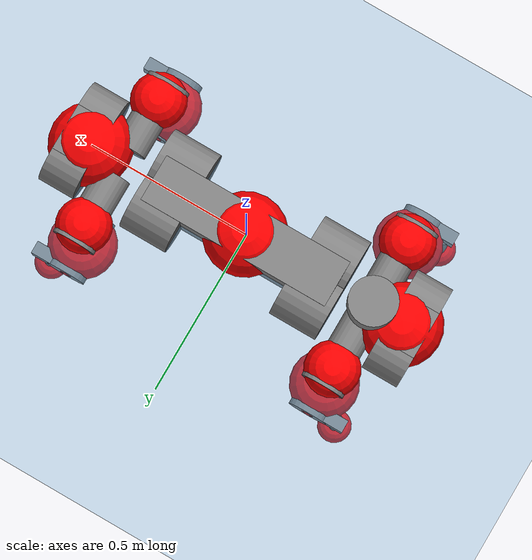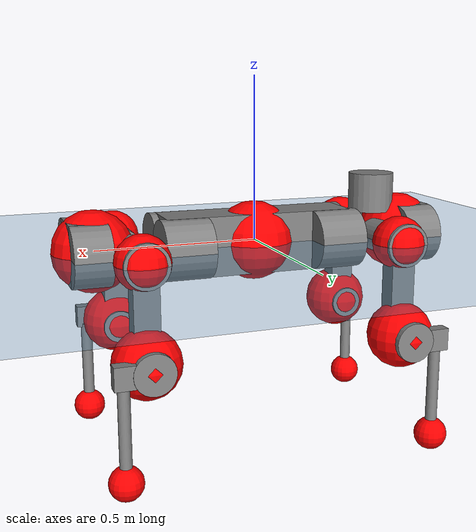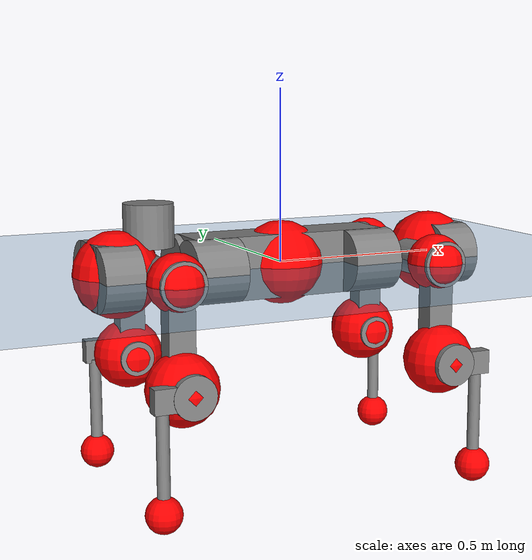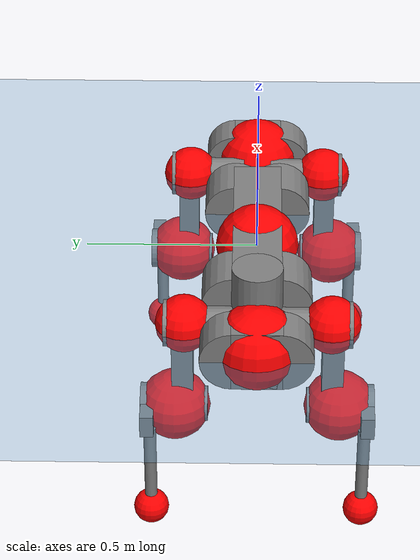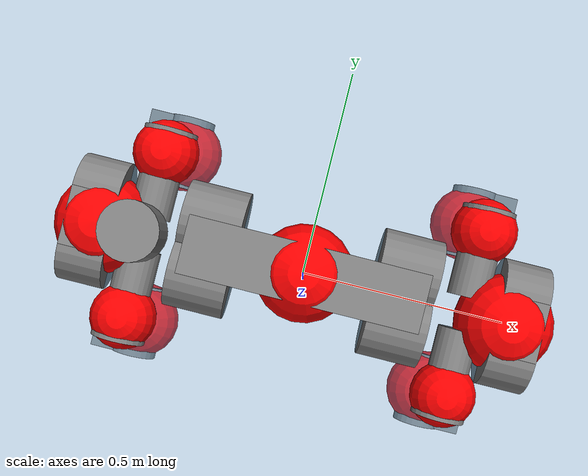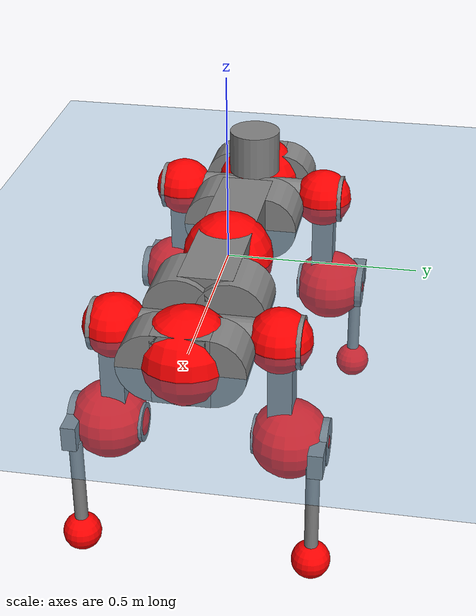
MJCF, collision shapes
<mujoco model="anymal_c">
  <compiler angle="radian" assetdir="assets" balanceinertia="true" inertiafromgeom="false"/>

  <option timestep="0.005" density="1.2" viscosity="2e-05"/>

  <size nkey="1"/>

  <visual>
    <quality shadowsize="8192"/>
    <map shadowclip="0.5"/>
  </visual>

  <default>
    <default class="/">
      <material specular="0" shininess="0.25"/>
      <geom contype="0" conaffinity="0" group="1" solref="-1000 -80"/>
      <site size="0.01 0.005 0.005" group="5"/>
      <general forcelimited="true" forcerange="-80 80" biastype="affine" gainprm="80" biasprm="0 -80 -2"/>
      <default class="anymal_c">
        <joint armature="0.01" damping="0.01" frictionloss="0.1"/>
        <default class="visual">
          <geom type="mesh" group="2"/>
          <default class="visual_zflip"/>
        </default>
        <default class="collision">
          <geom type="cylinder" group="3"/>
          <default class="foot">
            <geom size="0.03 0 0" type="sphere" condim="6" priority="1" friction="0.8 0.02 0.01" solimp="0.015 1 0.03"/>
          </default>
        </default>
      </default>
      <default class="reward_collision_sphere">
        <geom group="5" rgba="1 0 0 1"/>
      </default>
    </default>
  </default>

  <asset>
    <texture type="skybox" colorspace="auto" name="//unnamed_texture_0" builtin="gradient" rgb1="0.95 0.95 0.95" rgb2="0.95 0.95 0.95" width="100" height="600"/>
    <texture type="2d" colorspace="auto" name="texplane" builtin="checker" rgb1="0.345 0.575 0.748" rgb2="0.345 0.575 0.748" markrgb="1 1 1" width="512" height="512"/>
    <texture type="2d" colorspace="linear" name="base" file="base.png"/>
    <texture type="2d" colorspace="linear" name="top_shell" file="top_shell.png"/>
    <texture type="2d" colorspace="linear" name="bottom_shell" file="bottom_shell.png"/>
    <texture type="2d" colorspace="linear" name="remote" file="remote.png"/>
    <texture type="2d" colorspace="linear" name="hatch" file="hatch.png"/>
    <texture type="2d" colorspace="linear" name="handle" file="handle.png"/>
    <texture type="2d" colorspace="linear" name="face" file="face.png"/>
    <texture type="2d" colorspace="linear" name="battery" file="battery.png"/>
    <texture type="2d" colorspace="linear" name="lidar_cage" file="lidar_cage.png"/>
    <texture type="2d" colorspace="linear" name="depth_camera" file="depth_camera.png"/>
    <texture type="2d" colorspace="linear" name="wide_angle_camera" file="wide_angle_camera.png"/>
    <texture type="2d" colorspace="linear" name="lidar" file="lidar.png"/>
    <texture type="2d" colorspace="linear" name="drive" file="drive.png"/>
    <texture type="2d" colorspace="linear" name="hip_l" file="hip_l.png"/>
    <texture type="2d" colorspace="linear" name="shank_l" file="shank_l.png"/>
    <texture type="2d" colorspace="linear" name="foot" file="foot.png"/>
    <texture type="2d" colorspace="linear" name="thigh" file="thigh.png"/>
    <texture type="2d" colorspace="linear" name="shank_r" file="shank_r.png"/>
    <texture type="2d" colorspace="linear" name="hip_r" file="hip_r.png"/>
    <material name="MatPlane" class="/" texture="texplane" texuniform="true" texrepeat="2 2" specular="0.9" shininess="0.5"/>
    <material name="black_plastic" class="/" rgba="0.007 0.007 0.007 1"/>
    <material name="green" class="/" rgba="0.052 0.178 0.033 1"/>
    <material name="red" class="/" rgba="0.178 0.006 0.005 1"/>
    <material name="yellow" class="/" rgba="0.178 0.119 0.006 1"/>
    <material name="lwl" class="/" rgba="0.8 0.8 0.8 1"/>
    <material name="base" class="/" texture="base"/>
    <material name="top_shell" class="/" texture="top_shell"/>
    <material name="bottom_shell" class="/" texture="bottom_shell"/>
    <material name="hip_l" class="/" texture="hip_l"/>
    <material name="thigh" class="/" texture="thigh"/>
    <material name="shank_l" class="/" texture="shank_l"/>
    <material name="foot" class="/" texture="foot"/>
    <material name="hip_r" class="/" texture="hip_r"/>
    <material name="shank" class="/" texture="shank_r"/>
    <material name="hatch" class="/" texture="hatch"/>
    <material name="remote" class="/" texture="remote"/>
    <material name="handle" class="/" texture="handle"/>
    <material name="face" class="/" texture="face"/>
    <material name="depth_camera" class="/" texture="depth_camera"/>
    <material name="wide_angle_camera" class="/" texture="wide_angle_camera"/>
    <material name="battery" class="/" texture="battery"/>
    <material name="lidar_cage" class="/" texture="lidar_cage"/>
    <material name="lidar" class="/" texture="lidar"/>
    <material name="drive" class="/" texture="drive"/>
    <mesh name="base_0" class="/" file="base_0.obj"/>
    <mesh name="base_1" class="/" file="base_1.obj"/>
    <mesh name="base_2" class="/" file="base_2.obj"/>
    <mesh name="base_3" class="/" file="base_3.obj"/>
    <mesh name="base_4" class="/" file="base_4.obj"/>
    <mesh name="base_5" class="/" file="base_5.obj"/>
    <mesh name="top_shell" class="/" file="top_shell.obj"/>
    <mesh name="bottom_shell" class="/" file="bottom_shell.obj"/>
    <mesh name="remote" class="/" file="remote.obj"/>
    <mesh name="handle" class="/" file="handle.obj"/>
    <mesh name="face" class="/" file="face.obj"/>
    <mesh name="wide_angle_camera" class="/" file="wide_angle_camera.obj"/>
    <mesh name="depth_camera" class="/" file="depth_camera.obj"/>
    <mesh name="battery" class="/" file="battery.obj"/>
    <mesh name="lidar_cage" class="/" file="lidar_cage.obj"/>
    <mesh name="lidar" class="/" file="lidar.obj"/>
    <mesh name="drive" class="/" file="drive.obj"/>
    <mesh name="hip_l" class="/" file="hip_l.obj"/>
    <mesh name="thigh" class="/" file="thigh.obj"/>
    <mesh name="shank_l" class="/" file="shank_l.obj"/>
    <mesh name="foot" class="/" file="foot.obj"/>
    <mesh name="hip_r" class="/" file="hip_r.obj"/>
    <mesh name="hatch" class="/" file="hatch.obj"/>
    <mesh name="shank_r" class="/" file="shank_r.obj"/>
  </asset>

  <worldbody>
    <geom name="floor" class="/" size="100 100 0.125" type="plane" group="0" material="MatPlane"/>
    <light name="toplight_shadow" class="/" pos="0 0 5" dir="0.0990148 0.0990148 -0.990148" type="directional" ambient="0.04 0.04 0.04" diffuse="0.55 0.55 0.55" specular="0.12 0.12 0.12"/>
    <light name="toplight_fill" class="/" pos="0 0 5" dir="0.0990148 0.0990148 -0.990148" type="directional" castshadow="false" ambient="0.04 0.04 0.04" diffuse="0.3 0.3 0.3" specular="0.08 0.08 0.08"/>
    <body name="trunk" childclass="anymal_c" pos="0.00263513 -0.000465772 -0.000106173" quat="0.999999 -0.00103022 -0.00056362 -0.000546309">
      <inertial pos="-6.16701e-05 -0.0002902 0.0497415" quat="0.497369 0.499608 0.499942 0.503065" mass="19.079" diaginertia="1.07257 0.454887 0.201846"/>
      <joint name="//unnamed_joint_0" type="free" armature="0" damping="0" frictionloss="0"/>
      <geom name="//unnamed_geom_1" class="visual" material="green" mesh="base_0"/>
      <geom name="//unnamed_geom_2" class="visual" material="yellow" mesh="base_1"/>
      <geom name="//unnamed_geom_3" class="visual" material="red" mesh="base_2"/>
      <geom name="//unnamed_geom_4" class="visual" material="black_plastic" mesh="base_3"/>
      <geom name="//unnamed_geom_5" class="visual" material="lwl" mesh="base_4"/>
      <geom name="//unnamed_geom_6" class="visual" material="base" mesh="base_5"/>
      <geom name="trunk_1" class="collision" size="0.294067 0.0709817 0.0912622" type="box"/>
      <geom name="trunk_2" class="collision" size="0.0912622 0.0735168" pos="0.241723 0.0658633 0" quat="0.707107 0 0.707107 0"/>
      <geom name="trunk_3" class="collision" size="0.0912622 0.0735168" pos="-0.241723 0.0658633 0" quat="0.707107 0 0.707107 0"/>
      <geom name="trunk_4" class="collision" size="0.0912622 0.0735168" pos="0.241723 -0.0658633 0" quat="0.707107 0 0.707107 0"/>
      <geom name="trunk_5" class="collision" size="0.0912622 0.0735168" pos="-0.241723 -0.0658633 0" quat="0.707107 0 0.707107 0"/>
      <geom name="//unnamed_geom_12" class="visual" material="top_shell" mesh="top_shell"/>
      <geom name="//unnamed_geom_13" class="visual" material="bottom_shell" mesh="bottom_shell"/>
      <geom name="//unnamed_geom_14" class="visual" material="remote" mesh="remote"/>
      <geom name="//unnamed_geom_15" class="visual" material="handle" mesh="handle"/>
      <geom name="//unnamed_geom_16" class="visual" pos="0.460664 0 0" quat="1 0 0 0" material="face" mesh="face"/>
      <geom name="trunk_6" class="collision" size="0.0557714 0.0709817 0.0912622" pos="0.521789 0 0" type="box"/>
      <geom name="//unnamed_geom_18" class="collision" size="0.0912622 0.0557714" pos="0.521789 0.0658633 0" quat="0.707107 0 0.707107 0"/>
      <geom name="//unnamed_geom_19" class="collision" size="0.0912622 0.0557714" pos="0.521789 -0.0658633 0" quat="0.707107 0 0.707107 0"/>
      <geom name="//unnamed_geom_20" class="visual" pos="0.51306 0 -0.0279782" quat="0.965926 0 0.258819 0" material="depth_camera" mesh="depth_camera"/>
      <geom name="//unnamed_geom_21" class="visual" pos="0.570134 0 0.0148173" material="wide_angle_camera" mesh="wide_angle_camera"/>
      <geom name="//unnamed_geom_22" class="visual_zflip" pos="-0.460664 0 0" quat="0 0 0 1" material="face" mesh="face"/>
      <geom name="trunk_7" class="collision" size="0.0557714 0.0709817 0.0912622" pos="-0.521789 0 0" quat="0 0 0 1" type="box"/>
      <geom name="//unnamed_geom_24" class="collision" size="0.0912622 0.0557714" pos="-0.521789 -0.0658633 0" quat="0 -0.707107 0 0.707107"/>
      <geom name="//unnamed_geom_25" class="collision" size="0.0912622 0.0557714" pos="-0.521789 0.0658633 0" quat="0 -0.707107 0 0.707107"/>
      <geom name="//unnamed_geom_26" class="visual" pos="-0.51306 0 -0.0279782" quat="0 -0.258819 0 0.965926" material="depth_camera" mesh="depth_camera"/>
      <geom name="//unnamed_geom_27" class="visual_zflip" pos="-0.570134 0 0.0148173" quat="0 0 0 1" material="wide_angle_camera" mesh="wide_angle_camera"/>
      <geom name="//unnamed_geom_28" class="visual" material="battery" mesh="battery"/>
      <geom name="//unnamed_geom_29" class="visual" pos="0 0.0696996 0.0296776" quat="0.683013 -0.183013 0.183013 0.683013" material="depth_camera" mesh="depth_camera"/>
      <geom name="//unnamed_geom_30" class="visual" pos="0 -0.0696996 0.0296776" quat="0.683013 0.183013 0.183013 -0.683013" material="depth_camera" mesh="depth_camera"/>
      <geom name="//unnamed_geom_31" class="visual" pos="-0.404539 0 0.0727502" quat="1 0 0 0" material="lidar_cage" mesh="lidar_cage"/>
      <geom name="trunk_8" class="collision" size="0.0709817 0.0608415" pos="-0.404539 0 0.132138"/>
      <geom name="//unnamed_geom_33" class="visual" pos="-0.404539 -6.69723e-05 0.140749" quat="0.707107 0 0 -0.707107" material="lidar" mesh="lidar"/>
      <geom name="//unnamed_geom_34" class="visual" pos="0.3333 0.0978714 -8.4345e-10" quat="0.258819 0.965926 0 0" material="drive" mesh="drive"/>
      <geom name="//unnamed_geom_35" class="visual" pos="0.3333 -0.0978714 8.4345e-10" quat="0.258819 -0.965926 0 0" material="drive" mesh="drive"/>
      <geom name="//unnamed_geom_36" class="visual" pos="-0.3333 0.0978714 8.4345e-10" quat="0 0 0.965926 -0.258819" material="drive" mesh="drive"/>
      <geom name="//unnamed_geom_37" class="visual" pos="-0.3333 -0.0978714 -8.4345e-10" quat="0 0 -0.965926 -0.258819" material="drive" mesh="drive"/>
      <geom name="//unnamed_geom_38" class="visual" pos="0.128919 0 0.0722553" quat="1 0 0 0" material="hatch" mesh="hatch"/>
      <geom name="//unnamed_geom_39" class="reward_collision_sphere" size="0.121683"/>
      <geom name="//unnamed_geom_40" class="reward_collision_sphere" size="0.121683" pos="0.500117 0 0"/>
      <geom name="//unnamed_geom_41" class="reward_collision_sphere" size="0.121683" pos="-0.500117 0 0"/>
      <site name="imu" pos="0.274786 0.0110231 0.0584743" size="0.0101402"/>
      <camera name="track" pos="0 -1.88181 0" quat="0.707107 0.707107 0 0" mode="trackcom"/>
      <camera name="ego_camera" pos="0.500117 0 -0.039592" quat="-0.5 -0.5 0.5 0.5"/>
      <body name="LF_HIP" pos="0.333766 0.0993777 -3.70353e-05" quat="0.258857 0.965916 1.86563e-05 -0.000104404">
        <inertial pos="0.0619403 -0.0157899 -0.00766265" quat="-0.128114 0.709948 -0.134692 0.679278" mass="2.8591" diaginertia="0.0101284 0.00360114 0.00312291"/>
        <joint name="LF_HAA" pos="0 0 0" axis="0.999882 0.00231399 0.015203" range="-0.666328 0.494025" armature="0.0100617" damping="0.0115464" frictionloss="0.102031"/>
        <geom name="//unnamed_geom_42" class="visual" pos="0 -4.96164e-05 8.14945e-06" quat="0.258819 -0.965926 0 0" material="hip_l" mesh="hip_l"/>
        <geom name="//unnamed_geom_43" class="visual" pos="0.0665712 -0.078438 -0.0456479" quat="0.183013 -0.683013 0.683013 0.183013" material="drive" mesh="drive"/>
        <geom name="//unnamed_geom_44" class="collision" size="0.0507012 0.0709817" pos="0.0665712 -0.011253 -0.00683456" quat="-0.353553 -0.612372 0.612372 -0.353553"/>
        <body name="LF_THIGH" pos="0.0673292 -0.0677376 -0.040906" quat="0.184028 -0.682899 0.682733 0.183462">
          <inertial pos="0.0362869 -0.00114937 -0.245738" quat="0.993192 -0.00510905 -0.0805202 0.0840225" mass="3.10814" diaginertia="0.0502767 0.0216605 0.00401168"/>
          <joint name="LF_HFE" pos="0 0 0" axis="0.999997 0.00256683 -0.000189295" range="-3.14911 3.13505" armature="0.0103444" damping="0.00922961" frictionloss="0.10528"/>
          <geom name="//unnamed_geom_45" class="visual" pos="0.00339164 5.34444e-06 0" quat="0.707107 0 0 -0.707107" material="thigh" mesh="thigh"/>
          <geom name="//unnamed_geom_46" class="collision" size="0.0659116 0.040561" pos="0.0444549 0 0" quat="0.5 0.5 -0.5 -0.5"/>
          <geom name="//unnamed_geom_47" class="collision" size="0.0380259 0.0304207 0.143296" pos="0.0333412 0 -0.139872" quat="0.707107 0 0 -0.707107" type="box"/>
          <geom name="//unnamed_geom_48" class="visual" pos="0.111471 0 -0.282093" quat="1 0 0 0" material="drive" mesh="drive"/>
          <geom name="//unnamed_geom_49" class="collision" size="0.0507012 0.0709817" pos="0.0336746 0 -0.282093" quat="0.707107 0 0.707107 0"/>
          <geom name="//unnamed_geom_50" class="reward_collision_sphere" size="0.081122" pos="0.0277843 0 0"/>
          <body name="LF_SHANK" pos="0.111176 -0.00297571 -0.281898" quat="1 -0.000643548 5.76255e-05 0.000221663">
            <inertial pos="0.00384068 -0.0572749 -0.078394" quat="0.992748 -0.117226 0.000604221 -0.0266132" mass="0.612721" diaginertia="0.0175848 0.00714699 0.00108471"/>
            <joint name="LF_KFE" pos="0 0 0" axis="0.999998 0.000658956 0.00170985" range="-3.19175 3.15022" armature="0.0103419" damping="0" frictionloss="0.103814"/>
            <geom name="//unnamed_geom_51" class="visual" pos="0.00110594 0.00589694 0" quat="0.707107 0 0 -0.707107" material="shank_l" mesh="shank_l"/>
            <geom name="LF_kfe_act" class="collision" size="0.0608415 0.0202805" pos="0.0222274 0 0" quat="0.5 0.5 -0.5 -0.5"/>
            <geom name="//unnamed_geom_53" class="collision" size="0.0583054 0.0342233 0.0192665" pos="0.0222274 -0.054101 0" quat="0.5 0.5 -0.5 -0.5" type="box"/>
            <geom name="//unnamed_geom_54" class="visual" pos="0.0145031 -0.0808521 -0.334522" quat="0.382683 0 0 -0.92388" material="foot" mesh="foot"/>
            <geom name="LF_calf" class="collision" size="0.0177454 0.143233" pos="0.0145034 -0.0827525 -0.167261" quat="0.707107 0 0 -0.707107"/>
            <geom name="LF_foot" class="foot" size="0.0335449" pos="0.0145034 -0.0827525 -0.312252" quat="0.707107 0 0 -0.707107"/>
            <geom name="//unnamed_geom_57" class="reward_collision_sphere" size="0.101402" pos="-0.0555686 0 0"/>
            <geom name="//unnamed_geom_58" class="reward_collision_sphere" size="0.0507012" pos="0.0145034 -0.0827525 -0.312252"/>
            <site name="LF_foot" class="foot" pos="0.0145034 -0.0827525 -0.312252" quat="0.707107 0 0 -0.707107" size="0.0101402"/>
          </body>
        </body>
      </body>
      <body name="RF_HIP" pos="0.333077 -0.0980455 -0.00244268" quat="0.259552 -0.965729 0.000812969 0.000464246">
        <inertial pos="0.0636 0.0124461 -0.00830327" quat="0.126221 0.682401 0.133624 0.70749" mass="2.8678" diaginertia="0.00960428 0.0035902 0.00304547"/>
        <joint name="RF_HAA" pos="0 0 0" axis="1 -0.000544113 0.000204034" range="-0.509468 0.721564" armature="0.00968264" damping="0.0130367" frictionloss="0.0895083"/>
        <geom name="//unnamed_geom_59" class="visual" pos="0 4.9616e-05 8.14942e-06" quat="0.258819 0.965926 0 0" material="hip_r" mesh="hip_r"/>
        <geom name="//unnamed_geom_60" class="visual" pos="0.0665712 0.078438 -0.0456479" quat="0.183013 0.683013 0.683013 -0.183013" material="drive" mesh="drive"/>
        <geom name="//unnamed_geom_61" class="collision" size="0.0507012 0.0709817" pos="0.0665712 0.011253 -0.00683456" quat="-0.353553 0.612372 0.612372 0.353553"/>
        <body name="RF_THIGH" pos="0.0667316 0.065348 -0.0412863" quat="0.18298 0.682968 0.683036 -0.183126">
          <inertial pos="0.0350974 -0.00204554 -0.243148" quat="0.992098 -0.00762804 -0.0865661 0.0904998" mass="3.23868" diaginertia="0.0509939 0.0222223 0.00407756"/>
          <joint name="RF_HFE" pos="0 0 0" axis="1 -0.000361908 0.000601401" range="-3.13364 3.18347" armature="0.0102473" damping="0.0146596" frictionloss="0.100803"/>
          <geom name="//unnamed_geom_62" class="visual" pos="0.00339164 5.34444e-06 0" quat="0.707107 0 0 -0.707107" material="thigh" mesh="thigh"/>
          <geom name="//unnamed_geom_63" class="collision" size="0.0659116 0.040561" pos="0.0444549 0 0" quat="0.5 0.5 0.5 0.5"/>
          <geom name="//unnamed_geom_64" class="collision" size="0.0380259 0.0304207 0.143296" pos="0.0333412 0 -0.139872" quat="0.707107 0 0 0.707107" type="box"/>
          <geom name="//unnamed_geom_65" class="visual" pos="0.111471 0 -0.282093" quat="1 0 0 0" material="drive" mesh="drive"/>
          <geom name="//unnamed_geom_66" class="collision" size="0.0507012 0.0709817" pos="0.0336746 0 -0.282093" quat="0.707107 0 0.707107 0"/>
          <geom name="//unnamed_geom_67" class="reward_collision_sphere" size="0.081122" pos="0.0277843 0 0"/>
          <body name="RF_SHANK" pos="0.111738 -0.001865 -0.281589" quat="1 3.63422e-05 6.26919e-05 3.78568e-05">
            <inertial pos="0.00657164 0.0581966 -0.0797878" quat="0.994036 0.107207 -0.00693738 0.0187193" mass="0.608107" diaginertia="0.0171757 0.00679661 0.00103788"/>
            <joint name="RF_KFE" pos="0 0 0" axis="0.999964 -0.00403247 0.00739971" range="-3.13402 3.16895" armature="0.0105381" damping="0.0188984" frictionloss="0.103469"/>
            <geom name="//unnamed_geom_68" class="visual" pos="0.00110594 -0.00589692 0" quat="0.707107 0 0 0.707107" material="shank" mesh="shank_r"/>
            <geom name="RF_kfe_act" class="collision" size="0.0608415 0.0202805" pos="0.0222274 0 0" quat="0.5 0.5 0.5 0.5"/>
            <geom name="//unnamed_geom_70" class="collision" size="0.0583054 0.0342233 0.0192665" pos="0.0222274 0.054101 0" quat="0.5 0.5 0.5 0.5" type="box"/>
            <geom name="//unnamed_geom_71" class="visual" pos="0.0145037 0.0808521 -0.334522" quat="0.382683 0 0 0.92388" material="foot" mesh="foot"/>
            <geom name="RF_calf" class="collision" size="0.0177454 0.143233" pos="0.0145034 0.0827525 -0.167261" quat="0.707107 0 0 0.707107"/>
            <geom name="RF_foot" class="foot" size="0.0279979" pos="0.0145034 0.0827525 -0.312252" quat="0.707107 0 0 0.707107"/>
            <geom name="//unnamed_geom_74" class="reward_collision_sphere" size="0.101402" pos="-0.0555686 0 0"/>
            <geom name="//unnamed_geom_75" class="reward_collision_sphere" size="0.0507012" pos="0.0145034 0.0827525 -0.312252"/>
            <site name="RF_foot" class="foot" pos="0.0145034 0.0827525 -0.312252" quat="0.707107 0 0 0.707107" size="0.0101402"/>
          </body>
        </body>
      </body>
      <body name="LH_HIP" pos="-0.332447 0.0982851 -0.000537721" quat="-6.73836e-05 -9.0917e-06 0.965931 -0.2588">
        <inertial pos="0.0625727 0.0167622 -0.0101573" quat="0.142213 0.686173 0.124141 0.702518" mass="2.95707" diaginertia="0.00984443 0.00357057 0.00318591"/>
        <joint name="LH_HAA" pos="0 0 0" axis="0.999999 -0.000548088 0.00148231" range="-0.483871 0.705588" armature="0.00907539" damping="0.0153557" frictionloss="0.114126"/>
        <geom name="//unnamed_geom_76" class="visual" pos="0 4.9616e-05 8.14942e-06" quat="-0.258819 -0.965926 0 0" material="hip_r" mesh="hip_r"/>
        <geom name="//unnamed_geom_77" class="visual" pos="0.0665712 0.078438 -0.0456479" quat="0.183013 0.683013 0.683013 -0.183013" material="drive" mesh="drive"/>
        <geom name="//unnamed_geom_78" class="collision" size="0.0507012 0.0709817" pos="0.0665712 0.011253 -0.00683456" quat="-0.353553 0.612372 0.612372 0.353553"/>
        <body name="LH_THIGH" pos="0.0657831 0.0655178 -0.0400952" quat="0.182998 0.68291 0.683086 -0.183138">
          <inertial pos="0.0341658 -0.000294959 -0.243695" quat="0.992445 -0.00337544 -0.0835146 0.0898173" mass="3.26308" diaginertia="0.0509516 0.0215653 0.00398928"/>
          <joint name="LH_HFE" pos="0 0 0" axis="0.999993 0.00281326 -0.00237828" stiffness="0.00329636" range="-3.13054 3.14891" armature="0.011076" damping="0.00482206" frictionloss="0.101535"/>
          <geom name="//unnamed_geom_79" class="visual" pos="0.00339164 5.34444e-06 0" quat="0.707107 0 0 -0.707107" material="thigh" mesh="thigh"/>
          <geom name="//unnamed_geom_80" class="collision" size="0.0659116 0.040561" pos="0.0444549 0 0" quat="0.5 0.5 -0.5 -0.5"/>
          <geom name="//unnamed_geom_81" class="collision" size="0.0380259 0.0304207 0.143296" pos="0.0333412 0 -0.139872" quat="0.707107 0 0 -0.707107" type="box"/>
          <geom name="//unnamed_geom_82" class="visual" pos="0.111471 0 -0.282093" quat="1 0 0 0" material="drive" mesh="drive"/>
          <geom name="//unnamed_geom_83" class="collision" size="0.0507012 0.0709817" pos="0.0336746 0 -0.282093" quat="0.707107 0 0.707107 0"/>
          <geom name="//unnamed_geom_84" class="reward_collision_sphere" size="0.081122" pos="0.0277843 0 0"/>
          <body name="LH_SHANK" pos="0.111743 -0.00105986 -0.284295" quat="1 0.00022217 7.08964e-05 0.000363912">
            <inertial pos="0.00684592 0.0601494 -0.0793231" quat="0.99276 0.116885 -0.00193807 0.0275993" mass="0.60748" diaginertia="0.0169167 0.00678793 0.00101751"/>
            <joint name="LH_KFE" pos="0 0 0" axis="0.999975 0.00635511 -0.00324842" range="-3.14814 3.1385" armature="0.0105019" damping="0.00150457" frictionloss="0.114795"/>
            <geom name="//unnamed_geom_85" class="visual" pos="0.00110594 -0.00589692 0" quat="-0.707107 0 0 -0.707107" material="shank" mesh="shank_r"/>
            <geom name="LH_kfe_act" class="collision" size="0.0608415 0.0202805" pos="0.0222274 0 0" quat="0.5 0.5 -0.5 -0.5"/>
            <geom name="//unnamed_geom_87" class="collision" size="0.0583054 0.0342233 0.0192665" pos="0.0222274 0.054101 0" quat="0.5 0.5 -0.5 -0.5" type="box"/>
            <geom name="//unnamed_geom_88" class="visual" pos="0.0145037 0.0808521 -0.334522" quat="-0.382683 0 0 -0.92388" material="foot" mesh="foot"/>
            <geom name="LH_calf" class="collision" size="0.0177454 0.143233" pos="0.0145034 0.0827525 -0.167261" quat="0.707107 0 0 -0.707107"/>
            <geom name="LH_foot" class="foot" size="0.0316638" pos="0.0145034 0.0827525 -0.312252" quat="0.707107 0 0 -0.707107"/>
            <geom name="//unnamed_geom_91" class="reward_collision_sphere" size="0.101402" pos="-0.0555686 0 0"/>
            <geom name="//unnamed_geom_92" class="reward_collision_sphere" size="0.0507012" pos="0.0145034 0.0827525 -0.312252"/>
            <site name="LH_foot" class="foot" pos="0.0145034 0.0827525 -0.312252" quat="0.707107 0 0 -0.707107" size="0.0101402"/>
          </body>
        </body>
      </body>
      <body name="RH_HIP" pos="-0.334107 -0.0988955 -0.00114411" quat="0.000144453 -0.000930834 -0.965685 -0.259713">
        <inertial pos="0.0656199 -0.0126772 -0.0110884" quat="-0.120903 0.712039 -0.137998 0.677746" mass="2.89712" diaginertia="0.00993682 0.00361128 0.00311909"/>
        <joint name="RH_HAA" pos="0 0 0" axis="0.999898 -0.0142721 0.00078087" range="-0.738692 0.47945" armature="0.0100447" damping="0.0123992" frictionloss="0.0971481"/>
        <geom name="//unnamed_geom_93" class="visual" pos="0 -4.96164e-05 8.14945e-06" quat="-0.258819 0.965926 0 0" material="hip_l" mesh="hip_l"/>
        <geom name="//unnamed_geom_94" class="visual" pos="0.0665712 -0.078438 -0.0456479" quat="-0.183013 0.683013 -0.683013 -0.183013" material="drive" mesh="drive"/>
        <geom name="//unnamed_geom_95" class="collision" size="0.0507012 0.0709817" pos="0.0665712 -0.011253 -0.00683456" quat="0.353553 0.612372 -0.612372 0.353553"/>
        <body name="RH_THIGH" pos="0.0674897 -0.0698064 -0.0443439" quat="-0.182985 0.683016 -0.683016 -0.183016">
          <inertial pos="0.0345229 -0.000281008 -0.243052" quat="0.993085 -0.00576416 -0.0806714 0.0850998" mass="3.10932" diaginertia="0.0517652 0.022436 0.00397378"/>
          <joint name="RH_HFE" pos="0 0 0" axis="0.999996 0.00205746 0.00176404" range="-3.14017 3.19333" armature="0.0100798" damping="0.00804667" frictionloss="0.0970436"/>
          <geom name="//unnamed_geom_96" class="visual" pos="0.00339164 5.34444e-06 0" quat="0.707107 0 0 -0.707107" material="thigh" mesh="thigh"/>
          <geom name="//unnamed_geom_97" class="collision" size="0.0659116 0.040561" pos="0.0444549 0 0" quat="0.5 0.5 0.5 0.5"/>
          <geom name="//unnamed_geom_98" class="collision" size="0.0380259 0.0304207 0.143296" pos="0.0333412 0 -0.139872" quat="0.707107 0 0 0.707107" type="box"/>
          <geom name="//unnamed_geom_99" class="visual" pos="0.111471 0 -0.282093" quat="1 0 0 0" material="drive" mesh="drive"/>
          <geom name="//unnamed_geom_100" class="collision" size="0.0507012 0.0709817" pos="0.0336746 0 -0.282093" quat="0.707107 0 0.707107 0"/>
          <geom name="//unnamed_geom_101" class="reward_collision_sphere" size="0.081122" pos="0.0277843 0 0"/>
          <body name="RH_SHANK" pos="0.111918 0.000361481 -0.281099" quat="1 1.18276e-05 -1.68283e-06 0.000173051">
            <inertial pos="0.0044102 -0.0579321 -0.0801756" quat="0.992678 -0.118134 -0.00309531 -0.0249845" mass="0.609183" diaginertia="0.0170843 0.00682695 0.00109128"/>
            <joint name="RH_KFE" pos="0 0 0" axis="0.999889 -0.0134746 0.00628847" range="-3.11038 3.14101" armature="0.010696" damping="0.020113" frictionloss="0.106735"/>
            <geom name="//unnamed_geom_102" class="visual" pos="0.00110594 0.00589694 0" quat="0.707107 0 0 -0.707107" material="shank_l" mesh="shank_l"/>
            <geom name="RH_kfe_act" class="collision" size="0.0608415 0.0202805" pos="0.0222274 0 0" quat="0.5 0.5 0.5 0.5"/>
            <geom name="//unnamed_geom_104" class="collision" size="0.0583054 0.0342233 0.0192665" pos="0.0222274 -0.054101 0" quat="0.5 0.5 0.5 0.5" type="box"/>
            <geom name="//unnamed_geom_105" class="visual" pos="0.0145031 -0.0808521 -0.334522" quat="0.382683 0 0 -0.92388" material="foot" mesh="foot"/>
            <geom name="RH_calf" class="collision" size="0.0177454 0.143233" pos="0.0145034 -0.0827525 -0.167261" quat="0.707107 0 0 0.707107"/>
            <geom name="RH_foot" class="foot" size="0.0273781" pos="0.0145034 -0.0827525 -0.312252" quat="0.707107 0 0 0.707107"/>
            <geom name="//unnamed_geom_108" class="reward_collision_sphere" size="0.101402" pos="-0.0555686 0 0"/>
            <geom name="//unnamed_geom_109" class="reward_collision_sphere" size="0.0507012" pos="0.0145034 -0.0827525 -0.312252"/>
            <site name="RH_foot" class="foot" pos="0.0145034 -0.0827525 -0.312252" quat="0.707107 0 0 0.707107" size="0.0101402"/>
          </body>
        </body>
      </body>
    </body>
  </worldbody>

  <contact>
    <pair class="/" geom1="floor" geom2="LF_foot" name="//unnamed_contact_0"/>
    <pair class="/" geom1="floor" geom2="RF_foot" name="//unnamed_contact_1"/>
    <pair class="/" geom1="floor" geom2="LH_foot" name="//unnamed_contact_2"/>
    <pair class="/" geom1="floor" geom2="RH_foot" name="//unnamed_contact_3"/>
  </contact>

  <actuator>
    <general name="LF_HAA" class="/" joint="LF_HAA" forcerange="-81.6874 81.6874" gainprm="81.0788" biasprm="0 -81.0788 -1.9692"/>
    <general name="LF_HFE" class="/" joint="LF_HFE" forcerange="-79.675 79.675" gainprm="81.0788" biasprm="0 -81.0788 -1.9692"/>
    <general name="LF_KFE" class="/" joint="LF_KFE" forcerange="-80.7015 80.7015" gainprm="81.0788" biasprm="0 -81.0788 -1.9692"/>
    <general name="RF_HAA" class="/" joint="RF_HAA" forcerange="-81.4381 81.4381" gainprm="81.0788" biasprm="0 -81.0788 -1.9692"/>
    <general name="RF_HFE" class="/" joint="RF_HFE" forcerange="-85.325 85.325" gainprm="81.0788" biasprm="0 -81.0788 -1.9692"/>
    <general name="RF_KFE" class="/" joint="RF_KFE" forcerange="-81.4562 81.4562" gainprm="81.0788" biasprm="0 -81.0788 -1.9692"/>
    <general name="LH_HAA" class="/" joint="LH_HAA" forcerange="-89.6399 89.6399" gainprm="81.0788" biasprm="0 -81.0788 -1.9692"/>
    <general name="LH_HFE" class="/" joint="LH_HFE" forcerange="-81.5163 81.5163" gainprm="81.0788" biasprm="0 -81.0788 -1.9692"/>
    <general name="LH_KFE" class="/" joint="LH_KFE" forcerange="-74.1034 74.1034" gainprm="81.0788" biasprm="0 -81.0788 -1.9692"/>
    <general name="RH_HAA" class="/" joint="RH_HAA" forcerange="-77.9197 77.9197" gainprm="81.0788" biasprm="0 -81.0788 -1.9692"/>
    <general name="RH_HFE" class="/" joint="RH_HFE" forcerange="-89.5443 89.5443" gainprm="81.0788" biasprm="0 -81.0788 -1.9692"/>
    <general name="RH_KFE" class="/" joint="RH_KFE" forcerange="-80.1361 80.1361" gainprm="81.0788" biasprm="0 -81.0788 -1.9692"/>
  </actuator>

  <sensor>
    <gyro site="imu" name="imu_angular_velocity"/>
    <velocimeter site="imu" name="imu_linear_velocity"/>
    <framelinvel objtype="site" objname="LF_foot" name="LF_foot_global_linear_velocity"/>
    <framelinvel objtype="site" objname="RF_foot" name="RF_foot_global_linear_velocity"/>
    <framelinvel objtype="site" objname="LH_foot" name="LH_foot_global_linear_velocity"/>
    <framelinvel objtype="site" objname="RH_foot" name="RH_foot_global_linear_velocity"/>
  </sensor>

  <keyframe>
    <key name="home" qpos="0 0 0.55 1 0 0 0 0 0.4 -0.8 0 -0.4 0.8 0 -0.4 0.8 0 0.4 -0.8"/>
  </keyframe>
</mujoco>
